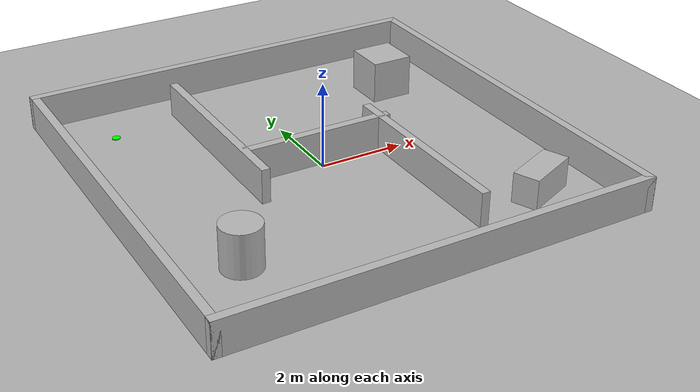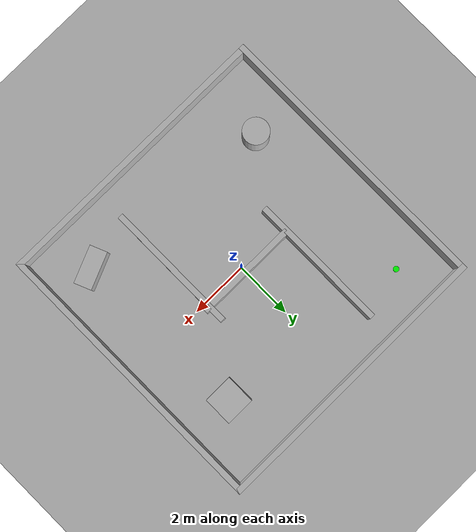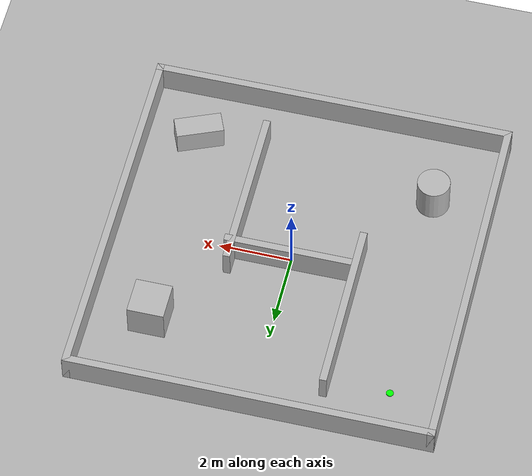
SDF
<?xml version="1.0" ?>
<sdf version="1.9">
  <world name="slam_test_world">

    <plugin
      filename="gz-sim-physics-system"
      name="gz::sim::systems::Physics">
    </plugin>

    <plugin
      filename="gz-sim-user-commands-system"
      name="gz::sim::systems::UserCommands">
    </plugin>

    <plugin
      filename="gz-sim-scene-broadcaster-system"
      name="gz::sim::systems::SceneBroadcaster">
    </plugin>

    <plugin
      filename="gz-sim-sensors-system"
      name="gz::sim::systems::Sensors">
      <render_engine>ogre2</render_engine>
    </plugin>

    <gravity>0 0 -9.8</gravity>

    <model name="start_marker">
      <static>true</static>
      <pose>-3.5 3.5 0.012 0 0 0</pose>
      <link name="link">
        <visual name="visual">
          <geometry>
            <cylinder>
              <radius>0.099</radius>
              <length>0.024</length>
            </cylinder>
          </geometry>
          <material>
            <ambient>0 1 0 1</ambient>
            <diffuse>0 1 0 1</diffuse>
          </material>
        </visual>
      </link>
    </model>

    <physics name="physics" type="ignored">
      <max_step_size>0.001</max_step_size>
      <real_time_factor>1.0</real_time_factor>
    </physics>

    <!-- Light defined inline so Gazebo Harmonic does not need model://sun -->
    <light type="directional" name="sun">
      <cast_shadows>true</cast_shadows>
      <pose>0 0 10 0 0 0</pose>
      <diffuse>0.8 0.8 0.8 1</diffuse>
      <specular>0.2 0.2 0.2 1</specular>
      <attenuation>
        <range>1000</range>
        <constant>0.9</constant>
        <linear>0.01</linear>
        <quadratic>0.001</quadratic>
      </attenuation>
      <direction>-0.5 0.1 -0.9</direction>
    </light>

    <!-- Ground plane defined inline so Gazebo Harmonic does not need model://ground_plane -->
    <model name="ground_plane">
      <static>true</static>
      <link name="link">
        <collision name="collision">
          <geometry>
            <plane>
              <normal>0 0 1</normal>
              <size>30 30</size>
            </plane>
          </geometry>
        </collision>
        <visual name="visual">
          <geometry>
            <plane>
              <normal>0 0 1</normal>
              <size>30 30</size>
            </plane>
          </geometry>
          <material>
            <ambient>0.7 0.7 0.7 1</ambient>
            <diffuse>0.7 0.7 0.7 1</diffuse>
          </material>
        </visual>
      </link>
    </model>

    <model name="environment">
      <static>true</static>

      <link name="north_wall">
        <pose>0 4.9 0.4 0 0 0</pose>
        <collision name="collision"><geometry><box><size>10 0.2 0.8</size></box></geometry></collision>
        <visual name="visual"><geometry><box><size>10 0.2 0.8</size></box></geometry></visual>
      </link>

      <link name="south_wall">
        <pose>0 -4.9 0.4 0 0 0</pose>
        <collision name="collision"><geometry><box><size>10 0.2 0.8</size></box></geometry></collision>
        <visual name="visual"><geometry><box><size>10 0.2 0.8</size></box></geometry></visual>
      </link>

      <link name="east_wall">
        <pose>4.9 0 0.4 0 0 0</pose>
        <collision name="collision"><geometry><box><size>0.2 10 0.8</size></box></geometry></collision>
        <visual name="visual"><geometry><box><size>0.2 10 0.8</size></box></geometry></visual>
      </link>

      <link name="west_wall">
        <pose>-4.9 0 0.4 0 0 0</pose>
        <collision name="collision"><geometry><box><size>0.2 10 0.8</size></box></geometry></collision>
        <visual name="visual"><geometry><box><size>0.2 10 0.8</size></box></geometry></visual>
      </link>

      <link name="wall_a">
        <pose>-1.8 1.6 0.4 0 0 0</pose>
        <collision name="collision"><geometry><box><size>0.2 4.8 0.8</size></box></geometry></collision>
        <visual name="visual"><geometry><box><size>0.2 4.8 0.8</size></box></geometry></visual>
      </link>

      <link name="wall_b">
        <pose>1.6 -1.5 0.4 0 0 0</pose>
        <collision name="collision"><geometry><box><size>0.2 4.6 0.8</size></box></geometry></collision>
        <visual name="visual"><geometry><box><size>0.2 4.6 0.8</size></box></geometry></visual>
      </link>

      <link name="wall_c">
        <pose>0 0.2 0.4 0 0 0</pose>
        <collision name="collision"><geometry><box><size>3.6 0.2 0.8</size></box></geometry></collision>
        <visual name="visual"><geometry><box><size>3.6 0.2 0.8</size></box></geometry></visual>
      </link>

      <link name="box_obstacle">
        <pose>3.2 2.7 0.5 0 0 0</pose>
        <collision name="collision"><geometry><box><size>1.0 1.0 1.0</size></box></geometry></collision>
        <visual name="visual"><geometry><box><size>1.0 1.0 1.0</size></box></geometry></visual>
      </link>

      <link name="cylinder_obstacle">
        <pose>-3.3 -2.7 0.5 0 0 0</pose>
        <collision name="collision"><geometry><cylinder><radius>0.45</radius><length>1.0</length></cylinder></geometry></collision>
        <visual name="visual"><geometry><cylinder><radius>0.45</radius><length>1.0</length></cylinder></geometry></visual>
      </link>

      <link name="small_box">
        <pose>3.4 -3.3 0.35 0 0 0.4</pose>
        <collision name="collision"><geometry><box><size>1.3 0.6 0.7</size></box></geometry></collision>
        <visual name="visual"><geometry><box><size>1.3 0.6 0.7</size></box></geometry></visual>
      </link>
    </model>

  </world>
</sdf>
